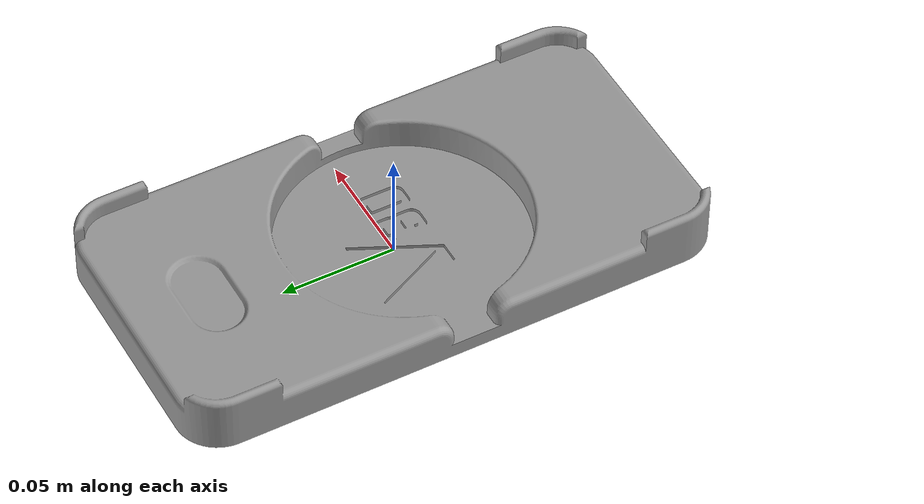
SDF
<?xml version='1.0'?>
<sdf version='1.6'>
  <model name='charge'>
    <link name='link_2'>
      <pose frame=''>-3e-06 8e-06 0 0 -0 0</pose>
      <inertial>
        <mass>1</mass>
        <inertia>
          <ixx>0.166667</ixx>
          <ixy>0</ixy>
          <ixz>0</ixz>
          <iyy>0.166667</iyy>
          <iyz>0</iyz>
          <izz>0.166667</izz>
        </inertia>
      </inertial>
      <visual name='visual'>
        <pose frame=''>0 0 0 0 -0 0</pose>
        <geometry>
          <mesh>
            <uri>/home/zeal/xarm_ros/src/xarm6_moveit_config/objects/LG_V30_Qi_Charging_Cradle/files/first_edition_logo.stl</uri>
            <scale>0.0015 0.0015 0.0015</scale>
          </mesh>
        </geometry>
        <material>
          <lighting>1</lighting>
          <script>
            <uri>file://media/materials/scripts/gazebo.material</uri>
            <name>Gazebo/Grey</name>
          </script>
          <shader type='pixel'/>
          <ambient>0.3 0.3 0.3 1</ambient>
          <diffuse>0.7 0.7 0.7 1</diffuse>
          <specular>0.01 0.01 0.01 1</specular>
          <emissive>0 0 0 1</emissive>
        </material>
        <transparency>0</transparency>
        <cast_shadows>1</cast_shadows>
      </visual>
      <collision name='collision'>
        <laser_retro>0</laser_retro>
        <max_contacts>10</max_contacts>
        <pose frame=''>0 0 0 0 -0 0</pose>
        <geometry>
          <mesh>
            <uri>/home/zeal/xarm_ros/src/xarm6_moveit_config/objects/LG_V30_Qi_Charging_Cradle/files/first_edition_logo.stl</uri>
            <scale>0.0015 0.0015 0.0015</scale>
          </mesh>
        </geometry>
        <surface>
          <friction>
            <ode>
              <mu>1</mu>
              <mu2>1</mu2>
              <fdir1>0 0 0</fdir1>
              <slip1>0</slip1>
              <slip2>0</slip2>
            </ode>
            <torsional>
              <coefficient>1</coefficient>
              <patch_radius>0</patch_radius>
              <surface_radius>0</surface_radius>
              <use_patch_radius>1</use_patch_radius>
              <ode>
                <slip>0</slip>
              </ode>
            </torsional>
          </friction>
          <bounce>
            <restitution_coefficient>0</restitution_coefficient>
            <threshold>1e+06</threshold>
          </bounce>
          <contact>
            <collide_without_contact>0</collide_without_contact>
            <collide_without_contact_bitmask>1</collide_without_contact_bitmask>
            <collide_bitmask>1</collide_bitmask>
            <ode>
              <soft_cfm>0</soft_cfm>
              <soft_erp>0.2</soft_erp>
              <kp>1e+13</kp>
              <kd>1</kd>
              <max_vel>0.01</max_vel>
              <min_depth>0</min_depth>
            </ode>
            <bullet>
              <split_impulse>1</split_impulse>
              <split_impulse_penetration_threshold>-0.01</split_impulse_penetration_threshold>
              <soft_cfm>0</soft_cfm>
              <soft_erp>0.2</soft_erp>
              <kp>1e+13</kp>
              <kd>1</kd>
            </bullet>
          </contact>
        </surface>
      </collision>
    </link>
    <static>0</static>
    <allow_auto_disable>1</allow_auto_disable>
  </model>
</sdf>
